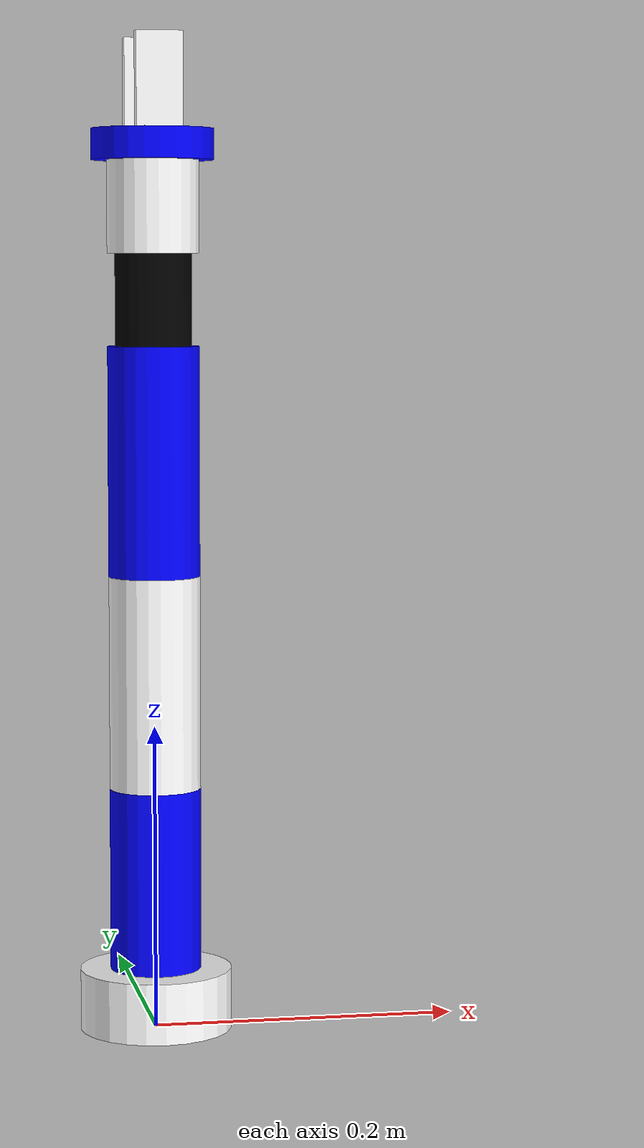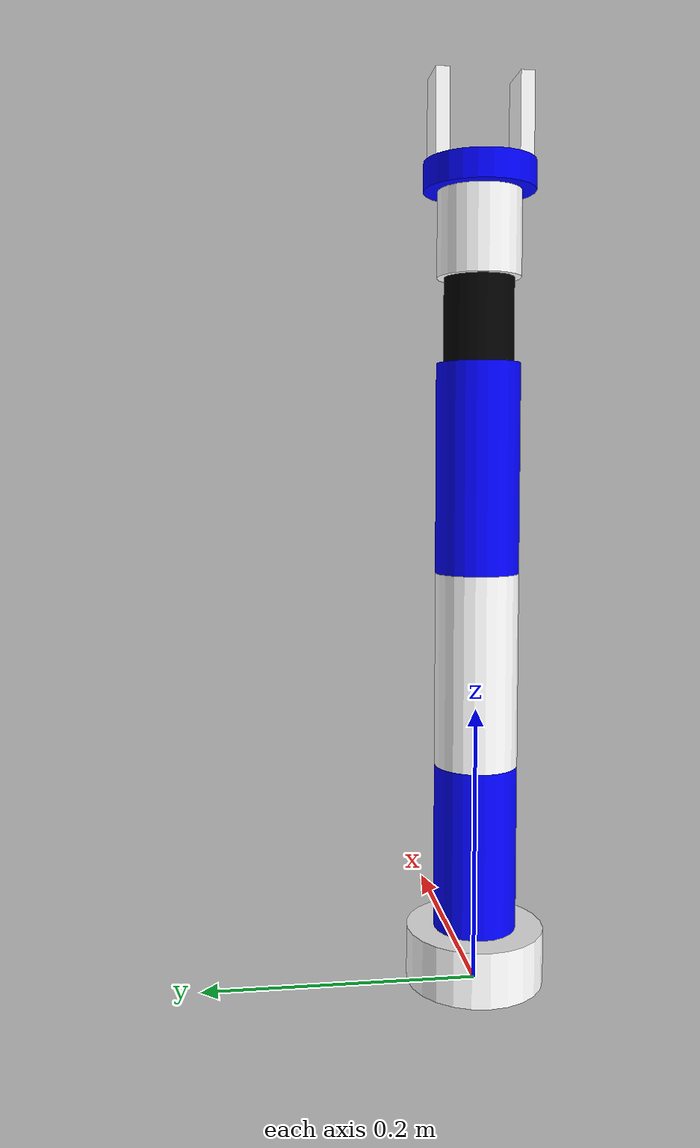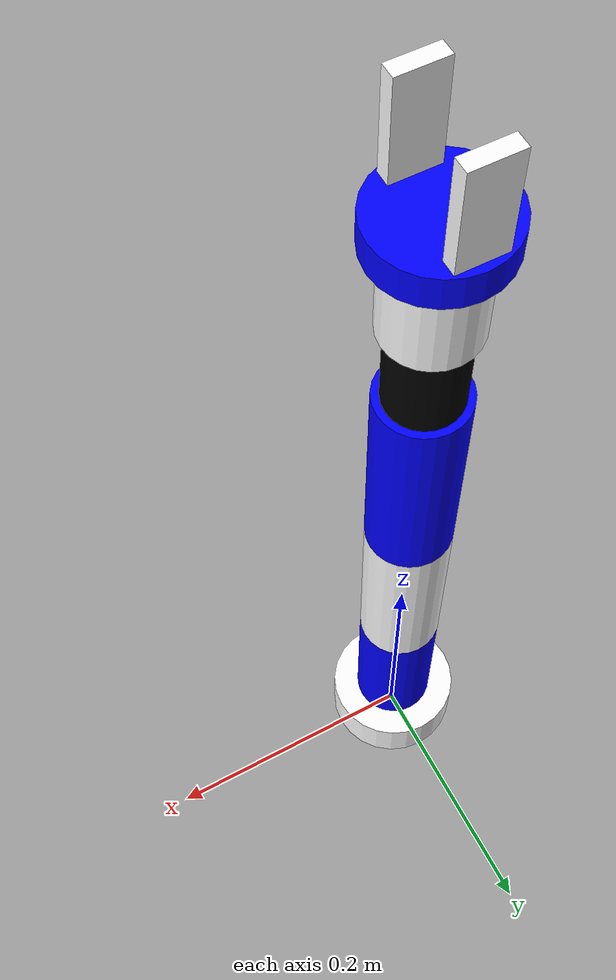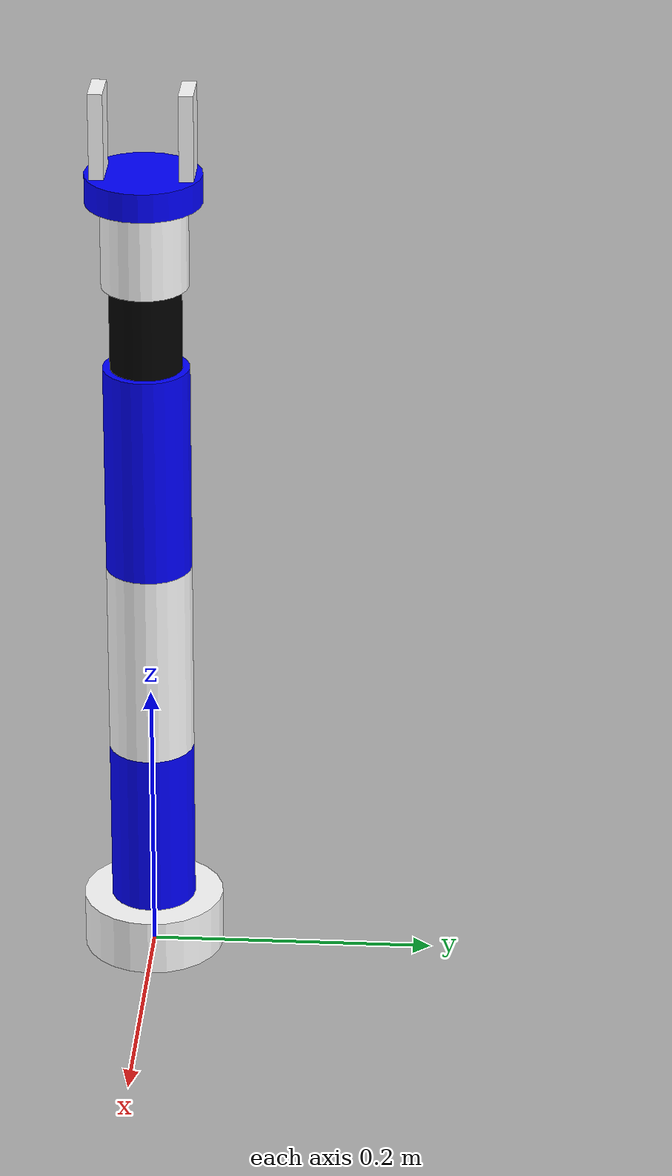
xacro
<?xml version="1.0"?>
<robot name="marm" xmlns:xacro="http://www.ros.org/wiki/xacro">
    <!-- Defining the colors used in this robot -->
    <material name="Black">
        <color rgba="0 0 0 1"/>
    </material>
    <material name="White">
        <color rgba="1 1 1 1"/>
    </material>
    <material name="Blue">
        <color rgba="0 0 1 1"/>
    </material>
    <material name="Red">
        <color rgba="1 0 0 1"/>
    </material>

    <!-- World link -->
    <link name="world" />

    <!-- Constants -->
    <xacro:property name="M_PI" value="3.14159"/>

    <!-- link1 properties -->
    <xacro:property name="link0_radius" value="0.05"/>
    <xacro:property name="link0_length" value="0.04"/>
    <xacro:property name="link0_mass" value="1"/>

    <!-- link1 properties -->
    <xacro:property name="link1_radius" value="0.03"/>
    <xacro:property name="link1_length" value="0.12"/>
    <xacro:property name="link1_mass" value="1"/>

    <!-- link2 properties -->
    <xacro:property name="link2_radius" value="0.03"/>
    <xacro:property name="link2_length" value="0.14"/>
    <xacro:property name="link2_mass" value="0.8"/>

    <!-- link3 properties -->
    <xacro:property name="link3_radius" value="0.03"/>
    <xacro:property name="link3_length" value="0.15"/>
    <xacro:property name="link3_mass" value="0.8"/>

    <!-- link4 properties -->
    <xacro:property name="link4_radius" value="0.025"/>
    <xacro:property name="link4_length" value="0.06"/>
    <xacro:property name="link4_mass" value="0.7"/>

    <!-- link5 properties -->
    <xacro:property name="link5_radius" value="0.03"/>
    <xacro:property name="link5_length" value="0.06"/>
    <xacro:property name="link5_mass" value="0.7"/>

    <!-- link6 properties -->
    <xacro:property name="link6_radius" value="0.04" />
    <xacro:property name="link6_length" value="0.02" />
    <xacro:property name="link6_mass" value="0.6" />

    <!-- gripper -->
    <xacro:property name="gripper_length" value="0.03" />
    <xacro:property name="gripper_width" value="0.01" />
    <xacro:property name="gripper_height" value="0.06" />
    <xacro:property name="gripper_mass" value="0.5" />

    <!-- Gripper frame -->
    <xacro:property name="grasp_frame_radius" value="0.001" />

    <!-- ////////////////////////////////////// ARM BASE ////////////////////////////////////// -->
    <joint name="world_arm_joint" type="fixed">
        <origin xyz="0 0 0" rpy="0 0 0" />
        <parent link="world"/>
        <child link="base_link" />
    </joint>

    <link name="base_link">
        <visual>
            <origin xyz="0 0 0" rpy="0 0 0" />
            <geometry>
                <box size="0.001 0.001 0.001" />
            </geometry>
        </visual>

        <collision>
            <geometry>
            <box size="0.001 0.001 0.001"/>
            </geometry>
        </collision>

        <inertial>
            <origin xyz="0 0 0" rpy="0 0 0" />
            <mass value="0.1" />
            <inertia ixx="0.0001" ixy="0" ixz="0" iyy="0.0001" iyz="0" izz="0.0001" />
        </inertial>
    </link>

    <joint name="base_joint" type="fixed">
        <origin xyz="0 0 ${link0_length/2}" rpy="0 0 0" />
        <parent link="base_link"/>
        <child link="link0" />
    </joint>

    <!-- ////////////////////////////////////// LINK0 ////////////////////////////////////// -->
    <link name="link0">
        <visual>
            <origin xyz="0 0 0" rpy="0 0 0" />
            <geometry>
                <cylinder radius="${link0_radius}" length="${link0_length}"/>
            </geometry>
            <material name="White" />
        </visual>
        <collision>
            <origin xyz="0 0 0" rpy="0 0 0" />
            <geometry>
                <cylinder radius="${link0_radius}" length="${link0_length}"/>
            </geometry>
        </collision>
        <inertial>
            <origin xyz="0 0 0" rpy="0 0 0" />
            <mass value="${link0_mass}" />
            <inertia ixx="${link0_mass * (3 * link0_radius ** 2 + link0_length ** 2) / 12}" ixy="0" ixz="0" iyy="${link0_mass * (3 * link0_radius ** 2 + link0_length ** 2) / 12}" iyz="0" izz="${link0_mass * link0_radius ** 2 / 2}" />
        </inertial>
    </link>

    <joint name="joint1" type="revolute">
        <parent link="link0"/>
        <child link="link1"/>
        <origin xyz="0 0 ${link0_length/2}" rpy="0 ${M_PI/2} 0" />
        <axis xyz="-1 0 0" />
        <limit effort="300" velocity="1" lower="${-M_PI}" upper="${M_PI}"/>
    </joint>

    <!-- ////////////////////////////////////// LINK1 ////////////////////////////////////// -->
    <link name="link1" >
        <visual>
            <origin xyz="-${link1_length/2} 0 0" rpy="0 ${M_PI/2} 0" />
            <geometry>
                <cylinder radius="${link1_radius}" length="${link1_length}"/>
            </geometry>
            <material name="Blue" />
        </visual>
        <collision>
            <origin xyz="-${link1_length/2} 0 0" rpy="0 ${M_PI/2} 0" />
            <geometry>
                <cylinder radius="${link1_radius}" length="${link1_length}"/>
            </geometry>
        </collision>
        <inertial>
            <origin xyz="-${link1_length/2} 0 0" rpy="0 ${M_PI/2} 0" />
            <mass value="${link1_mass}" />
            <inertia ixx="${link1_mass * link1_radius ** 2 / 2}" ixy="0" ixz="0" iyy="${link1_mass * (3 * link1_radius ** 2 + link1_length ** 2) / 12}" iyz="0" izz="${link1_mass * (3 * link1_radius ** 2 + link1_length ** 2) / 12}" />
        </inertial>
    </link>

    <joint name="joint2" type="revolute">
        <parent link="link1"/>
        <child link="link2"/>
        <origin xyz="-${link1_length} 0 0.0" rpy="-${M_PI/2} 0 ${M_PI/2}" />
        <axis xyz="1 0 0" />
        <limit effort="300" velocity="1" lower="${-M_PI}" upper="${M_PI}" />
    </joint>

    <!-- ////////////////////////////////////// LINK2 ////////////////////////////////////// -->
    <link name="link2" >
        <visual>
            <origin xyz="0 0 ${link2_length/2}" rpy="0 0 0" />
            <geometry>
                <cylinder radius="${link2_radius}" length="${link2_length}"/>
            </geometry>
            <material name="White" />
        </visual>

        <collision>
            <origin xyz="0 0 ${link2_length/2}" rpy="0 0 0" />
            <geometry>
                <cylinder radius="${link2_radius}" length="${link2_length}"/>
            </geometry>
        </collision>
        <inertial>
            <origin xyz="0 0 ${link2_length/2}" rpy="0 0 0" />
            <mass value="${link2_mass}" />
            <inertia ixx="${link2_mass * (3 * link2_radius ** 2 + link2_length ** 2) / 12}" ixy="0" ixz="0" iyy="${link2_mass * (3 * link2_radius ** 2 + link2_length ** 2) / 12}" iyz="0" izz="${link2_mass * link2_radius ** 2 / 2}" />
        </inertial>
    </link>

    <joint name="joint3" type="revolute">
        <parent link="link2"/>
        <child link="link3"/>
        <origin xyz="0 0 ${link2_length}" rpy="0 ${M_PI} 0" />
        <axis xyz="-1 0 0" />
        <limit effort="300" velocity="1" lower="${-M_PI}" upper="${M_PI}" />
    </joint>

    <!-- ////////////////////////////////////// LINK3 ////////////////////////////////////// -->
    <link name="link3" >
        <visual>
            <origin xyz="0 0 -${link3_length/2}" rpy="0 0 0" />
            <geometry>
                <cylinder radius="${link3_radius}" length="${link3_length}"/>
            </geometry>
            <material name="Blue" />
        </visual>
        <collision>
            <origin xyz="0 0 -${link3_length/2}" rpy="0 0 0" />
            <geometry>
                <cylinder radius="${link3_radius}" length="${link3_length}"/>
            </geometry>
        </collision>
        <inertial>
            <origin xyz="0 0 -${link3_length/2}" rpy="0 0 0" />
            <mass value="${link3_mass}" />
            <inertia ixx="${link3_mass * (3 * link3_radius ** 2 + link3_length ** 2) / 12}" ixy="0" ixz="0" iyy="${link3_mass * (3 * link3_radius ** 2 + link3_length ** 2) / 12}" iyz="0" izz="${link3_mass * link3_radius ** 2 / 2}" />
        </inertial>
    </link>

    <joint name="joint4" type="revolute">
        <parent link="link3"/>
        <child link="link4"/>
        <origin xyz="0.0 0.0 -${link3_length}" rpy="0 ${M_PI/2} ${M_PI}" />
        <axis xyz="1 0 0" />
        <limit effort="300" velocity="1" lower="${-M_PI}" upper="${M_PI}" />
    </joint>

    <!-- ////////////////////////////////////// LINK4 ////////////////////////////////////// -->
    <link name="link4" >
        <visual>
            <origin xyz="${link4_length/2} 0 0" rpy="0 ${M_PI/2} 0" />
            <geometry>
                <cylinder radius="${link4_radius}" length="${link4_length}"/>
            </geometry>
            <material name="Black" />
        </visual>
        <collision>
            <origin xyz="${link4_length/2} 0 0" rpy="0 ${M_PI/2} 0" />
            <geometry>
                <cylinder radius="${link4_radius}" length="${link4_length}"/>
            </geometry>
        </collision>
        <inertial>
            <origin xyz="${link4_length/2} 0 0" rpy="0 ${M_PI/2} 0" />
            <mass value="${link4_mass}" />
            <inertia ixx="${link4_mass * link4_radius ** 2 / 2}" ixy="0" ixz="0" iyy="${link4_mass * (3 * link4_radius ** 2 + link4_length ** 2) / 12}" iyz="0" izz="${link4_mass * (3 * link4_radius ** 2 + link4_length ** 2) / 12}" />
        </inertial>
    </link>

    <joint name="joint5" type="revolute">
        <parent link="link4"/>
        <child link="link5"/>
        <origin xyz="${link4_length} 0.0 0.0" rpy="0 ${M_PI/2} 0" />
        <axis xyz="1 0 0" />
        <limit effort="300" velocity="1" lower="${-M_PI}" upper="${M_PI}" />
    </joint>

    <!-- ////////////////////////////////////// LINK5 ////////////////////////////////////// -->
    <link name="link5">
        <visual>
            <origin xyz="0 0 ${link4_length/2}" rpy="0 0 0" />
            <geometry>
                <cylinder radius="${link5_radius}" length="${link5_length}"/>
            </geometry>
            <material name="White" />
        </visual>
        <collision>
            <origin xyz="0 0 ${link4_length/2} " rpy="0 0 0" />
            <geometry>
                <cylinder radius="${link5_radius}" length="${link5_length}"/>
            </geometry>
        </collision>
        <inertial>
            <origin xyz="0 0 ${link4_length/2}" rpy="0 0 0" />
            <mass value="${link5_mass}" />
            <inertia ixx="${link5_mass * (3 * link5_radius ** 2 + link5_length ** 2) / 12}" ixy="0" ixz="0" iyy="${link5_mass * (3 * link5_radius ** 2 + link5_length ** 2) / 12}" iyz="0" izz="${link5_mass * link5_radius ** 2 / 2}" />
        </inertial>
    </link>

    <joint name="joint6" type="revolute">
        <parent link="link5"/>
        <child link="link6"/>
        <origin xyz="0 0 ${link4_length}" rpy="${1.5*M_PI} -${M_PI/2} 0" />
        <axis xyz="1 0 0" />
        <limit effort="300" velocity="1" lower="${-2*M_PI}" upper="${2*M_PI}" />
    </joint>

    <!-- ////////////////////////////////////// LINK6 ////////////////////////////////////// -->
    <link name="link6">
        <visual>
            <origin xyz="${link6_length/2} 0 0 " rpy="0 ${M_PI/2} 0" />
            <geometry>
                <cylinder radius="${link6_radius}" length="${link6_length}"/>
            </geometry>
            <material name="Blue" />
        </visual>
        <collision>
            <origin xyz="${link6_length/2} 0 0" rpy="0 ${M_PI/2} 0" />
            <geometry>
                <cylinder radius="${link6_radius}" length="${link6_length}"/>
            </geometry>
        </collision>
        <inertial>
            <origin xyz="${link6_length/2} 0 0" rpy="0 ${M_PI/2} 0" />
            <mass value="${link6_mass}" />
            <inertia ixx="${link6_mass * link6_radius ** 2 / 2}" ixy="0" ixz="0" iyy="${link6_mass * (3 * link6_radius ** 2 + link6_length ** 2) / 12}" iyz="0" izz="${link6_mass * (3 * link6_radius ** 2 + link6_length ** 2) / 12}" />
        </inertial>
    </link>

    <joint name="finger_joint1" type="prismatic">
        <parent link="link6"/>
        <child link="gripper_finger_link1"/>
        <origin xyz="${link6_length} -0.03 0" rpy="0 0 0" />
        <axis xyz="0 1 0" />
        <limit effort="100" lower="0" upper="0.06" velocity="0.02"/>
    </joint>

    <!-- ////////////////////////////////////// gripper ////////////////////////////////////// -->
    <!-- LEFT GRIPPER AFT LINK -->
    <link name="gripper_finger_link1">
        <visual>
            <origin xyz="${gripper_height/2} 0 0" rpy="0 ${M_PI/2} 0" />
            <geometry>
                <box size="${gripper_length} ${gripper_width} ${gripper_height}" />
            </geometry>
            <material name="White" />
        </visual>
        <collision>
            <origin xyz="${gripper_height/2} 0 0" rpy="0 ${M_PI/2} 0" />
            <geometry>
                <box size="${gripper_length} ${gripper_width} ${gripper_height}" />
            </geometry>
        </collision>
        <inertial>
            <origin xyz="${gripper_height/2} 0 0" rpy="0 ${M_PI/2} 0" />
            <mass value="${gripper_mass}" />
            <inertia ixx="${gripper_mass * (gripper_width ** 2 + gripper_height ** 2) / 12}" ixy="0" ixz="0" iyy="${gripper_mass * (gripper_length ** 2 + gripper_height ** 2) / 12}" iyz="0" izz="${gripper_mass * (gripper_length ** 2 + gripper_width ** 2) / 12}" />
        </inertial>
    </link>

    <joint name="finger_joint2" type="fixed">
        <parent link="link6"/>
        <child link="gripper_finger_link2"/>
        <origin xyz="${link6_length} 0.03 0" rpy="0 0 0" />
    </joint>

    <!-- RIGHT GRIPPER AFT LINK -->
    <link name="gripper_finger_link2">
        <visual>
            <origin xyz="${gripper_height/2} 0 0" rpy="0 ${M_PI/2} 0" />
            <geometry>
                <box size="${gripper_length} ${gripper_width} ${gripper_height}" />
            </geometry>
            <material name="White" />
        </visual>
        <collision>
            <origin xyz="${gripper_height/2} 0 0" rpy="0 ${M_PI/2} 0" />
            <geometry>
                <box size="${gripper_length} ${gripper_width} ${gripper_height}" />
            </geometry>
        </collision>
        <inertial>
            <origin xyz="${gripper_height/2} 0 0" rpy="0 ${M_PI/2} 0" />
            <mass value="${gripper_mass}" />
            <inertia ixx="${gripper_mass * (gripper_width ** 2 + gripper_height ** 2) / 12}" ixy="0" ixz="0" iyy="${gripper_mass * (gripper_length ** 2 + gripper_height ** 2) / 12}" iyz="0" izz="${gripper_mass * (gripper_length ** 2 + gripper_width ** 2) / 12}" />
        </inertial>
    </link>

    <!-- Grasping frame -->
    <link name="grasping_frame">
        <inertial>
            <origin xyz="0 0 0" rpy="0 0 0" />
            <mass value="0.01" />
            <inertia ixx="0.00001" ixy="0" ixz="0" iyy="0.00001" iyz="0" izz="0.00001" />
        </inertial>
    </link>

    <joint name="grasping_frame_joint" type="fixed">
        <parent link="link6"/>
        <child link="grasping_frame"/>
        <origin xyz="${gripper_height} 0 0" rpy="0 0 0"/>
    </joint>

    <!-- ros2_control configuration -->
    <ros2_control name="marm_robot" type="system">
        <hardware>
            <!-- 完全使用软件仿真时使用此插件 -->

            <!-- gazebo仿真时使用此插件 -->
            <plugin>gz_ros2_control/GazeboSimSystem</plugin>
        </hardware>
        <joint name="joint1">
            <command_interface name="position"/>
            <state_interface name="position"/>
        </joint>
        <joint name="joint2">
            <command_interface name="position"/>
            <state_interface name="position"/>
        </joint>
        <joint name="joint3">
            <command_interface name="position"/>
            <state_interface name="position"/>
        </joint>
        <joint name="joint4">
            <command_interface name="position"/>
            <state_interface name="position"/>
        </joint>
        <joint name="joint5">
            <command_interface name="position"/>
            <state_interface name="position"/>
        </joint>
        <joint name="joint6">
            <command_interface name="position"/>
            <state_interface name="position"/>
        </joint>
        <joint name="finger_joint1">
            <command_interface name="position"/>
            <state_interface name="position"/>
        </joint>
    </ros2_control>

    <gazebo>
        <plugin name="gz_ros2_control::GazeboSimROS2ControlPlugin" filename="libgz_ros2_control-system.so">
            <parameters>$(find marm)/config/marm_ros2_controllers.yaml</parameters>
        </plugin>
    </gazebo>

    <gazebo reference="base_link">
        <material>Gazebo/White</material>
    </gazebo>

    <gazebo reference="link1">
        <material>Gazebo/Blue</material>
    </gazebo>

    <gazebo reference="link2">
        <material>Gazebo/White</material>
    </gazebo>

    <gazebo reference="link3">
        <material>Gazebo/Blue</material>
    </gazebo>

    <gazebo reference="link4">
        <material>Gazebo/Black</material>
    </gazebo>

    <gazebo reference="link5">
        <material>Gazebo/White</material>
    </gazebo>

    <gazebo reference="link6">
        <material>Gazebo/Blue</material>
    </gazebo>

    <gazebo reference="gripper_finger_link1">
        <material>Gazebo/White</material>
    </gazebo>

    <gazebo reference="gripper_finger_link2">
        <material>Gazebo/White</material>
    </gazebo>
</robot>
